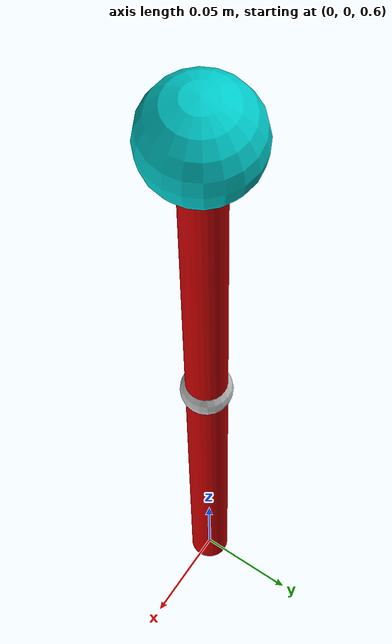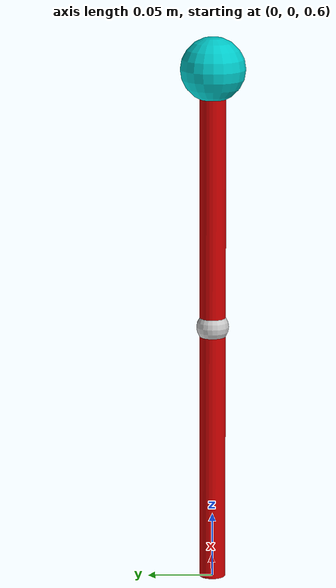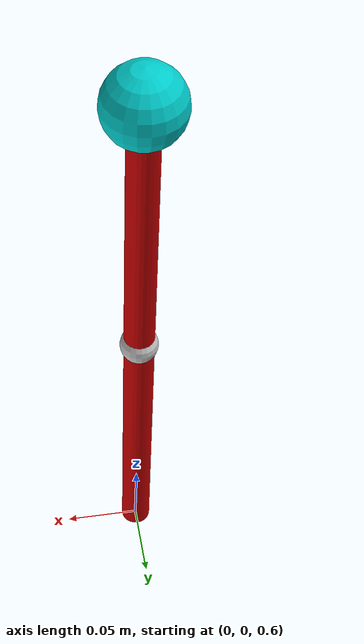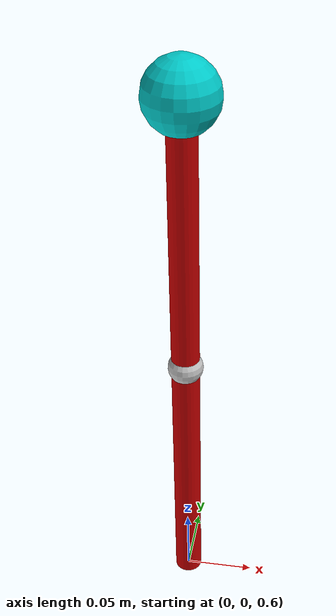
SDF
<?xml version="1.0" ?>
<sdf version="1.6">
  <world name="default">
    <scene>
      <ambient>0.4 0.4 0.4</ambient>
      <grid>false</grid>
    </scene>
    <!-- Illumination -->
    <light type="directional" name="sun">
      <cast_shadows>false</cast_shadows>
      <pose>5 5 5 0 0 0</pose>
      <diffuse>0.8 0.8 0.8 1</diffuse>
      <specular>0.2 0.2 0.2 1</specular>
      <attenuation>
        <range>1000</range>
        <constant>0.9</constant>
        <linear>0.01</linear>
        <quadratic>0.001</quadratic>
      </attenuation>
      <direction>-1 -1 -1</direction>
    </light>

    <!-- Models -->
    <model name="background_plane">
      <pose>-0.1 0 0 0 0 0</pose>
      <static>true</static>
      <link name="background_plane_link">
        <collision name="background_plane_collision">
          <geometry>
            <plane>
              <normal>0 0 1</normal>
              <size>5 5</size>
            </plane>
          </geometry>
        </collision>
        <visual name="background_plane_visual">
          <geometry>
            <plane>
              <normal>0 0 1</normal>
              <size>5 5</size>
            </plane>
          </geometry>
          <material>
            <diffuse>0.5 0.5 0.5 1</diffuse>
            <specular>0.5 0.5 0.5 1</specular>
          </material>
        </visual>
      </link>
    </model>

    <!-- RR robot (Red) - Position control -->
    <model name="RR_position_control">
      <pose>0 0 1 0 -3.14159 0</pose>

      <!-- Links -->
      <link name="RR_position_control_link0">
        <collision name="RR_position_control_link0_collision_0">
          <geometry>
            <sphere>
              <radius>0.025</radius>
            </sphere>
          </geometry>
        </collision>
        <visual name="RR_position_control_link0_visual_0">
          <geometry>
            <sphere>
              <radius>0.025</radius>
            </sphere>
          </geometry>
          <material>
            <ambient>0 0.5 0.5 1</ambient>
            <diffuse>0 0.8 0.8 1</diffuse>
            <specular>0.8 0.8 0.8 1</specular>
          </material>
        </visual>
      </link>

      <link name="RR_position_control_link1">
        <pose relative_to="RR_position_control_joint1">0 0 0.1 0 0 0</pose>
        <collision name="RR_position_control_link1_collision_0">
          <geometry>
            <cylinder>
              <radius>0.01</radius>
              <length>0.2</length>
            </cylinder>
          </geometry>
        </collision>
        <collision name="RR_position_control_link1_collision_1">
          <geometry>
            <sphere>
              <radius>0.0125</radius>
            </sphere>
          </geometry>
        </collision>
        <visual name="RR_position_control_link1_visual_0">
          <geometry>
            <cylinder>
              <radius>0.01</radius>
              <length>0.2</length>
            </cylinder>
          </geometry>
          <material>
            <ambient>0.5 0 0 1</ambient>
            <diffuse>0.8 0 0 1</diffuse>
            <specular>0.8 0 0 1</specular>
          </material>
        </visual>
        <visual name="RR_position_control_link1_visual_1">
          <pose relative_to="RR_position_control_joint1">0 0 0.2 0 0 0</pose>
          <geometry>
            <sphere>
              <radius>0.0125</radius>
            </sphere>
          </geometry>
          <material>
            <ambient>0.5 0.5 0.5 1</ambient>
            <diffuse>0.8 0.8 0.8 1</diffuse>
            <specular>0.8 0.8 0.8 1</specular>
          </material>
        </visual>
        <inertial>
          <mass>0.1</mass>
          <inertia>
            <ixx>0.0003358</ixx>
            <iyy>0.0003358</iyy>
            <izz>0.000005</izz>
          </inertia>
        </inertial>
      </link>
      <link name="RR_position_control_link2">
        <pose relative_to="RR_position_control_joint2">0 0 0.1 0 0 0</pose>
        <collision name="RR_position_control_link2_collision">
          <geometry>
            <cylinder>
              <radius>0.01</radius>
              <length>0.2</length>
            </cylinder>
          </geometry>
        </collision>
        <visual name="RR_position_control_link2_visual">
          <geometry>
            <cylinder>
              <radius>0.01</radius>
              <length>0.2</length>
            </cylinder>
          </geometry>
          <material>
            <ambient>0.5 0 0 1</ambient>
            <diffuse>0.8 0 0 1</diffuse>
            <specular>0.8 0 0 1</specular>
          </material>
        </visual>
        <inertial>
          <mass>0.1</mass>
          <inertia>
            <ixx>0.0003358</ixx>
            <iyy>0.0003358</iyy>
            <izz>0.000005</izz>
          </inertia>
        </inertial>
      </link>
      <!-- Joints -->
      <joint name="RR_position_control_joint1" type="revolute">
        <pose relative_to="RR_position_control_link0">0 0 0 0 0 0</pose>
        <parent>RR_position_control_link0</parent>
        <child>RR_position_control_link1</child>
        <axis>
          <xyz>1 0 0</xyz>
          <dynamics>
            <damping>1</damping>
          </dynamics>
        </axis>
      </joint>
      <joint name="RR_position_control_joint2" type="revolute">
        <pose relative_to="RR_position_control_link1">0 0 0.1 0 0 0</pose>
        <parent>RR_position_control_link1</parent>
        <child>RR_position_control_link2</child>
        <axis>
          <xyz>1 0 0</xyz>
          <dynamics>
            <damping>1</damping>
          </dynamics>
        </axis>
      </joint>
      <!-- Controller -->
      <plugin
          filename="gz-sim-joint-trajectory-controller-system"
          name="gz::sim::systems::JointTrajectoryController">

          <joint_name>RR_position_control_joint1</joint_name>
          <initial_position>0.7854</initial_position>
          <position_p_gain>5.0</position_p_gain>
          <position_i_gain>0.1</position_i_gain>
          <position_d_gain>0.5</position_d_gain>
          <position_i_min>-0.5</position_i_min>
          <position_i_max>0.5</position_i_max>
          <position_cmd_min>-10</position_cmd_min>
          <position_cmd_max>10</position_cmd_max>

          <joint_name>RR_position_control_joint2</joint_name>
          <initial_position>-1.5708</initial_position>
          <position_p_gain>5.0</position_p_gain>
          <position_i_gain>0.1</position_i_gain>
          <position_d_gain>0.5</position_d_gain>
          <position_i_min>-0.5</position_i_min>
          <position_i_max>0.5</position_i_max>
          <position_cmd_min>-10</position_cmd_min>
          <position_cmd_max>10</position_cmd_max>
      </plugin>

      <plugin
        filename="gz-sim-joint-state-publisher-system"
        name="gz::sim::systems::JointStatePublisher">
        <topic>/joint_states</topic>
      </plugin>

    </model>
  </world>
</sdf>
